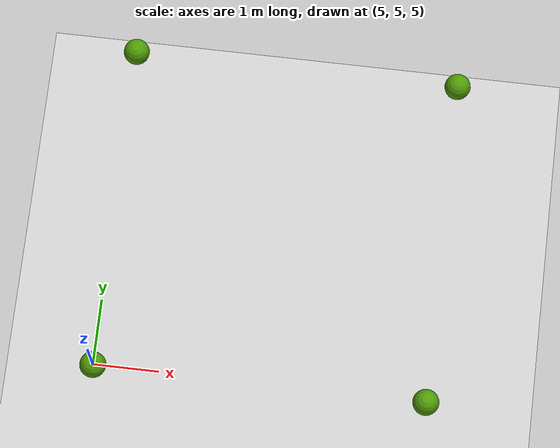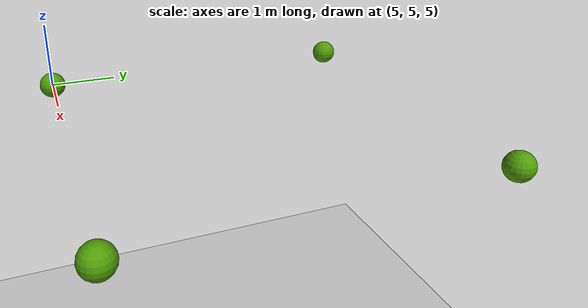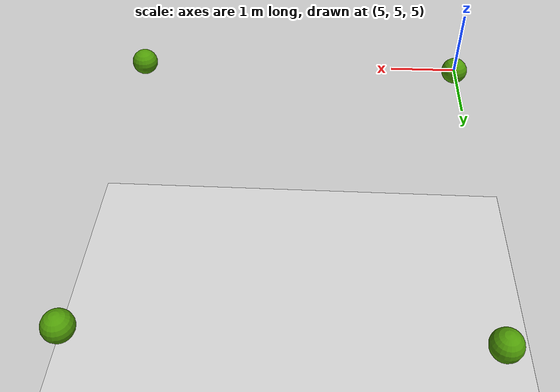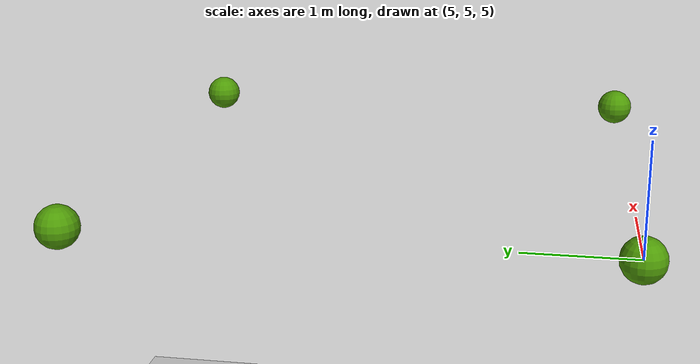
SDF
<sdf version="1.6">
 <world name="default">
  <physics type="ode">
   <ode>
    <solver><type>quick</type><iters>100</iters><sor>1.0</sor></solver>
    <constraints>
     <cfm>0.0</cfm>
     <erp>0.2</erp>
     <contact_max_correcting_vel>0.1</contact_max_correcting_vel>
     <contact_surface_layer>0.0</contact_surface_layer>
    </constraints>
   </ode>
   <real_time_update_rate>-1</real_time_update_rate>
  </physics>
  <gravity>0 0 -9.8</gravity>
  <include><uri>model://sun</uri></include>
  <model name="ground_plane">
   <static>true</static>
   <link name="link">
    <collision name="collision">
     <geometry><plane><normal>0 0 1</normal><size>5000 5000</size></plane></geometry>
     <surface><friction><ode><mu>100</mu><mu2>50</mu2></ode></friction></surface>
    </collision>
    <visual name="runway">
     <pose>000 0 0.005 0 0 0</pose>
     <cast_shadows>false</cast_shadows>
     <geometry><plane><normal>0 0 1</normal><size>1829 45</size></plane></geometry>
     <material>
      <script><uri>file://media/materials/scripts/gazebo.material</uri><name>Gazebo/Runway</name></script>
     </material>
    </visual>
    <visual name="grass">
     <pose>0 0 -0.1 0 0 0</pose>
     <cast_shadows>false</cast_shadows>
     <geometry><plane><normal>0 0 1</normal><size>5000 5000</size></plane></geometry>
     <material>
      <script><uri>file://media/materials/scripts/gazebo.material</uri><name>Gazebo/Grass</name></script>
     </material>
    </visual>
   </link>
  </model>
  <model name="uav_1_0">
   <pose>5 5 5 0 0 0</pose>
   <link name="link">
    <inertial>
     <mass>1</mass>
     <inertia><ixx>0.1</ixx></inertia>
     <inertia><ixy>0</ixy></inertia>
     <inertia><ixz>0</ixz></inertia>
     <inertia><iyy>0.1</iyy></inertia>
     <inertia><iyz>0</iyz></inertia>
     <inertia><izz>0.1</izz></inertia>
    </inertial>
    <gravity>0</gravity>
    <visual name="visual">
     <geometry><sphere><radius>0.2</radius></sphere></geometry>
     <material>
      <script><name>Gazebo/Grey</name><uri>file://media/materials/scripts/gazebo.material</uri></script>
      <shader type="pixel"><normal_map>__default__</normal_map></shader>
      <ambient>0.3 0.3 0.3 1</ambient>
      <diffuse>0.306 0.604 0.024 1</diffuse>
      <specular>0.01 0.01 0.01 1</specular>
      <emissive>0 0 0 1</emissive>
     </material>
     <transparency>0.05</transparency>
    </visual>
   </link>
   <static>0</static>
  </model>
  <model name="uav_1_1">
   <pose>5 10 5 0 0 0</pose>
   <link name="link">
    <inertial>
     <mass>1</mass>
     <inertia><ixx>0.1</ixx></inertia>
     <inertia><ixy>0</ixy></inertia>
     <inertia><ixz>0</ixz></inertia>
     <inertia><iyy>0.1</iyy></inertia>
     <inertia><iyz>0</iyz></inertia>
     <inertia><izz>0.1</izz></inertia>
    </inertial>
    <gravity>0</gravity>
    <visual name="visual">
     <geometry><sphere><radius>0.2</radius></sphere></geometry>
     <material>
      <script><name>Gazebo/Grey</name><uri>file://media/materials/scripts/gazebo.material</uri></script>
      <shader type="pixel"><normal_map>__default__</normal_map></shader>
      <ambient>0.3 0.3 0.3 1</ambient>
      <diffuse>0.306 0.604 0.024 1</diffuse>
      <specular>0.01 0.01 0.01 1</specular>
      <emissive>0 0 0 1</emissive>
     </material>
     <transparency>0.05</transparency>
    </visual>
   </link>
   <static>0</static>
  </model>
  <model name="uav_1_2">
   <pose>10 10 5 0 0 0</pose>
   <link name="link">
    <inertial>
     <mass>1</mass>
     <inertia><ixx>0.1</ixx></inertia>
     <inertia><ixy>0</ixy></inertia>
     <inertia><ixz>0</ixz></inertia>
     <inertia><iyy>0.1</iyy></inertia>
     <inertia><iyz>0</iyz></inertia>
     <inertia><izz>0.1</izz></inertia>
    </inertial>
    <gravity>0</gravity>
    <visual name="visual">
     <geometry><sphere><radius>0.2</radius></sphere></geometry>
     <material>
      <script><name>Gazebo/Grey</name><uri>file://media/materials/scripts/gazebo.material</uri></script>
      <shader type="pixel"><normal_map>__default__</normal_map></shader>
      <ambient>0.3 0.3 0.3 1</ambient>
      <diffuse>0.306 0.604 0.024 1</diffuse>
      <specular>0.01 0.01 0.01 1</specular>
      <emissive>0 0 0 1</emissive>
     </material>
     <transparency>0.05</transparency>
    </visual>
   </link>
   <static>0</static>
  </model>
  <model name="uav_1_3">
   <pose>10 5 5 0 0 0</pose>
   <link name="link">
    <inertial>
     <mass>1</mass>
     <inertia><ixx>0.1</ixx></inertia>
     <inertia><ixy>0</ixy></inertia>
     <inertia><ixz>0</ixz></inertia>
     <inertia><iyy>0.1</iyy></inertia>
     <inertia><iyz>0</iyz></inertia>
     <inertia><izz>0.1</izz></inertia>
    </inertial>
    <gravity>0</gravity>
    <visual name="visual">
     <geometry><sphere><radius>0.2</radius></sphere></geometry>
     <material>
      <script><name>Gazebo/Grey</name><uri>file://media/materials/scripts/gazebo.material</uri></script>
      <shader type="pixel"><normal_map>__default__</normal_map></shader>
      <ambient>0.3 0.3 0.3 1</ambient>
      <diffuse>0.306 0.604 0.024 1</diffuse>
      <specular>0.01 0.01 0.01 1</specular>
      <emissive>0 0 0 1</emissive>
     </material>
     <transparency>0.05</transparency>
    </visual>
   </link>
   <static>0</static>
  </model>
  <model name="uav_1_4">
   <pose>5 5 5 0 0 0</pose>
   <link name="link">
    <inertial>
     <mass>1</mass>
     <inertia><ixx>0.1</ixx></inertia>
     <inertia><ixy>0</ixy></inertia>
     <inertia><ixz>0</ixz></inertia>
     <inertia><iyy>0.1</iyy></inertia>
     <inertia><iyz>0</iyz></inertia>
     <inertia><izz>0.1</izz></inertia>
    </inertial>
    <gravity>0</gravity>
    <visual name="visual">
     <geometry><sphere><radius>0.2</radius></sphere></geometry>
     <material>
      <script><name>Gazebo/Grey</name><uri>file://media/materials/scripts/gazebo.material</uri></script>
      <shader type="pixel"><normal_map>__default__</normal_map></shader>
      <ambient>0.3 0.3 0.3 1</ambient>
      <diffuse>0.306 0.604 0.024 1</diffuse>
      <specular>0.01 0.01 0.01 1</specular>
      <emissive>0 0 0 1</emissive>
     </material>
     <transparency>0.05</transparency>
    </visual>
   </link>
   <static>0</static>
  </model>
 </world>
</sdf>
